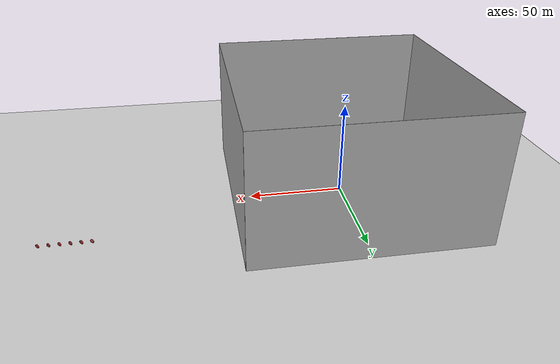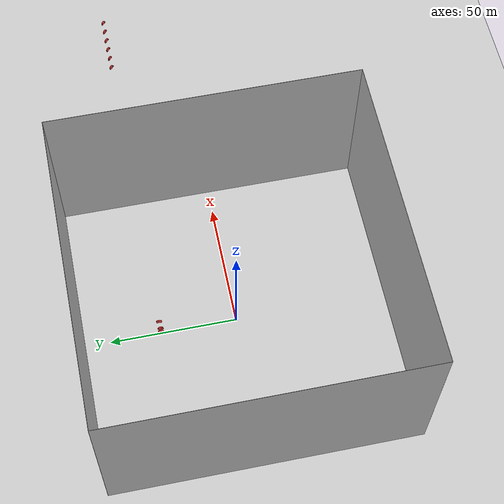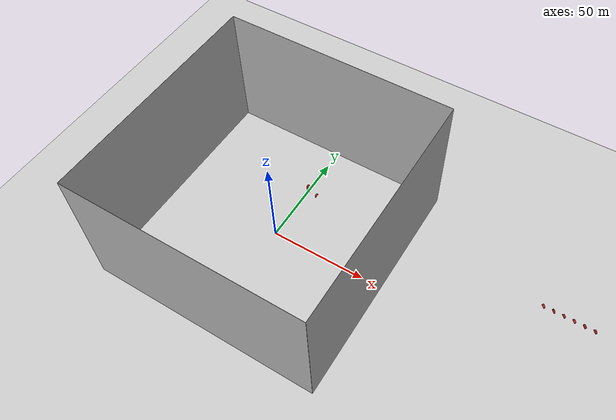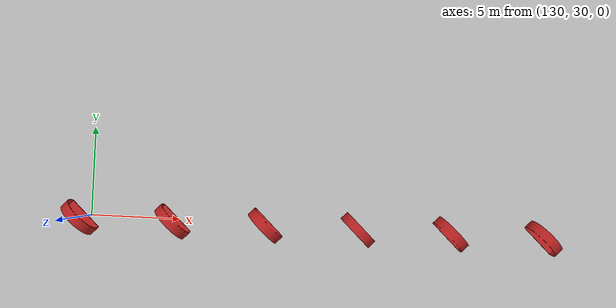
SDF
<sdf version="1.6">
 <world name="real_track">
  <plugin name="ros_interface_plugin" filename="librotors_gazebo_ros_interface_plugin.so"/>
  <physics type="ode">
   <max_step_size>0.001</max_step_size>
   <real_time_update_rate>1000</real_time_update_rate>
  </physics>
  <include><uri>model://sun</uri></include>
  <model name="ground_plane">
   <static>true</static>
   <link name="link">
    <collision name="collision">
     <geometry><plane><normal>0 0 1</normal><size>120 120</size></plane></geometry>
     <surface><friction><ode><mu>100</mu><mu2>50</mu2></ode></friction></surface>
    </collision>
    <visual name="visual">
     <cast_shadows>false</cast_shadows>
     <geometry><plane><normal>0 0 1</normal><size>120 120</size></plane></geometry>
     <material>
      <script>
       <uri>model://race_track/iros_materials/materials/scripts/carpet.material</uri>
       <uri>model://race_track/iros_materials/materials/textures</uri>
       <name>iros/carpet</name>
      </script>
     </material>
    </visual>
   </link>
  </model>
  <model name="wall_1">
   <pose>-60.0 0.0 34.0 0 0 0</pose>
   <static>true</static>
   <link name="link">
    <inertial><mass>1.0</mass></inertial>
    <collision name="collision"><geometry><box><size>0.1 120.0 70.0</size></box></geometry></collision>
    <visual name="visual">
     <geometry><box><size>0.1 120.0 70.0</size></box></geometry>
     <material>
      <script>
       <uri>model://race_track/iros_materials/materials/scripts/wall_1.material</uri>
       <uri>model://race_track/iros_materials/materials/textures</uri>
       <name>iros/wall_1</name>
      </script>
     </material>
    </visual>
   </link>
  </model>
  <model name="wall_2">
   <pose>0.0 -60.0 34.0 0 0 0</pose>
   <static>true</static>
   <link name="link">
    <inertial><mass>1.0</mass></inertial>
    <collision name="collision"><geometry><box><size>120 0.1 70.0</size></box></geometry></collision>
    <visual name="visual">
     <geometry><box><size>120 0.1 70.0</size></box></geometry>
     <material>
      <script>
       <uri>model://race_track/iros_materials/materials/scripts/wall_2.material</uri>
       <uri>model://race_track/iros_materials/materials/textures</uri>
       <name>iros/wall_2</name>
      </script>
     </material>
    </visual>
   </link>
  </model>
  <model name="wall_3">
   <pose>60.0 0.0 34.0 0 0 0</pose>
   <static>true</static>
   <link name="link">
    <inertial><mass>1.0</mass></inertial>
    <collision name="collision"><geometry><box><size>0.1 120.0 70.0</size></box></geometry></collision>
    <visual name="visual">
     <geometry><box><size>0.1 120.0 70.0</size></box></geometry>
     <material>
      <script>
       <uri>model://race_track/iros_materials/materials/scripts/wall_3.material</uri>
       <uri>model://race_track/iros_materials/materials/textures</uri>
       <name>iros/wall_3</name>
      </script>
     </material>
    </visual>
   </link>
  </model>
  <model name="wall_4">
   <pose>0.0 60.0 34.0 0 0 0</pose>
   <static>true</static>
   <link name="link">
    <inertial><mass>1.0</mass></inertial>
    <collision name="collision"><geometry><box><size>120 0.1 70.0</size></box></geometry></collision>
    <visual name="visual">
     <geometry><box><size>120 0.1 70.0</size></box></geometry>
     <material>
      <script>
       <uri>model://race_track/iros_materials/materials/scripts/wall_4.material</uri>
       <uri>model://race_track/iros_materials/materials/textures</uri>
       <name>iros/wall_4</name>
      </script>
     </material>
    </visual>
   </link>
  </model>
  <model name="gate_1">
   <pose>5 30 0.0 0 0 0.0</pose>
   <static>true</static>
   <link name="gate_1_body">
    <collision name="gate_1_collision">
     <geometry><mesh><uri>model://race_track/real_world/gate/meshes/gate.dae</uri></mesh></geometry>
    </collision>
    <visual name="gate_1_visual">
     <geometry><mesh><uri>model://race_track/real_world/gate/meshes/gate.dae</uri></mesh></geometry>
     <material><script><name>Gazebo/Red</name></script></material>
    </visual>
   </link>
  </model>
  <model name="gate_2">
   <pose>0.0 30 4.4 0 0 0</pose>
   <static>true</static>
   <link name="gate_2_body">
    <collision name="gate_2_collision">
     <geometry><mesh><uri>model://race_track/real_world/gate/meshes/gate.dae</uri></mesh></geometry>
    </collision>
    <visual name="gate_2_visual">
     <geometry><mesh><uri>model://race_track/real_world/gate/meshes/gate.dae</uri></mesh></geometry>
     <material><script><name>Gazebo/Red</name></script></material>
    </visual>
   </link>
  </model>
  <model name="gate_3">
   <pose>0 30 1.4 0 0 0</pose>
   <static>true</static>
   <link name="gate_3_body">
    <collision name="gate_3_collision">
     <geometry><mesh><uri>model://race_track/real_world/gate/meshes/gate.dae</uri></mesh></geometry>
    </collision>
    <visual name="gate_3_visual">
     <geometry><mesh><uri>model://race_track/real_world/gate/meshes/gate.dae</uri></mesh></geometry>
     <material><script><name>Gazebo/Red</name></script></material>
    </visual>
   </link>
  </model>
  <model name="gate_4">
   <pose>0.7 30 1.4 0 0 0.8</pose>
   <static>true</static>
   <link name="gate_4_body">
    <collision name="gate_4_collision">
     <geometry><mesh><uri>model://race_track/real_world/gate/meshes/gate.dae</uri></mesh></geometry>
    </collision>
    <visual name="gate_4_visual">
     <geometry><mesh><uri>model://race_track/real_world/gate/meshes/gate.dae</uri></mesh></geometry>
     <material><script><name>Gazebo/Red</name></script></material>
    </visual>
   </link>
  </model>
  <model name="gate_5">
   <pose>130.0 30 1.4 0 0 0.8</pose>
   <static>true</static>
   <link name="gate_5_body">
    <collision name="gate_5_collision">
     <geometry><mesh><uri>model://race_track/real_world/gate/meshes/gate.dae</uri></mesh></geometry>
    </collision>
    <visual name="gate_5_visual">
     <geometry><mesh><uri>model://race_track/real_world/gate/meshes/gate.dae</uri></mesh></geometry>
     <material><script><name>Gazebo/Red</name></script></material>
    </visual>
   </link>
  </model>
  <model name="gate_6">
   <pose>135.0 30 1.4 0 0 0.8</pose>
   <static>true</static>
   <link name="gate_6_body">
    <collision name="gate_6_collision">
     <geometry><mesh><uri>model://race_track/real_world/gate/meshes/gate.dae</uri></mesh></geometry>
    </collision>
    <visual name="gate_6_visual">
     <geometry><mesh><uri>model://race_track/real_world/gate/meshes/gate.dae</uri></mesh></geometry>
     <material><script><name>Gazebo/Red</name></script></material>
    </visual>
   </link>
  </model>
  <model name="gate_7">
   <pose>140.0 30 1.4 0 0 0.8</pose>
   <static>true</static>
   <link name="gate_7_body">
    <collision name="gate_7_collision">
     <geometry><mesh><uri>model://race_track/real_world/gate/meshes/gate.dae</uri></mesh></geometry>
    </collision>
    <visual name="gate_7_visual">
     <geometry><mesh><uri>model://race_track/real_world/gate/meshes/gate.dae</uri></mesh></geometry>
     <material><script><name>Gazebo/Red</name></script></material>
    </visual>
   </link>
  </model>
  <model name="gate_8">
   <pose>145.0 30 1.4 0 0 0.8</pose>
   <static>true</static>
   <link name="gate_8_body">
    <collision name="gate_8_collision">
     <geometry><mesh><uri>model://race_track/real_world/gate/meshes/gate.dae</uri></mesh></geometry>
    </collision>
    <visual name="gate_8_visual">
     <geometry><mesh><uri>model://race_track/real_world/gate/meshes/gate.dae</uri></mesh></geometry>
     <material><script><name>Gazebo/Red</name></script></material>
    </visual>
   </link>
  </model>
  <model name="gate_9">
   <pose>150.0 30 1.4 0 0 0.8</pose>
   <static>true</static>
   <link name="gate_9_body">
    <collision name="gate_9_collision">
     <geometry><mesh><uri>model://race_track/real_world/gate/meshes/gate.dae</uri></mesh></geometry>
    </collision>
    <visual name="gate_9_visual">
     <geometry><mesh><uri>model://race_track/real_world/gate/meshes/gate.dae</uri></mesh></geometry>
     <material><script><name>Gazebo/Red</name></script></material>
    </visual>
   </link>
  </model>
  <model name="gate_10">
   <pose>155.0 30 1.4 0 0 0.8</pose>
   <static>true</static>
   <link name="gate_10_body">
    <collision name="gate_10_collision">
     <geometry><mesh><uri>model://race_track/real_world/gate/meshes/gate.dae</uri></mesh></geometry>
    </collision>
    <visual name="gate_10_visual">
     <geometry><mesh><uri>model://race_track/real_world/gate/meshes/gate.dae</uri></mesh></geometry>
     <material><script><name>Gazebo/Red</name></script></material>
    </visual>
   </link>
  </model>
 </world>
</sdf>
